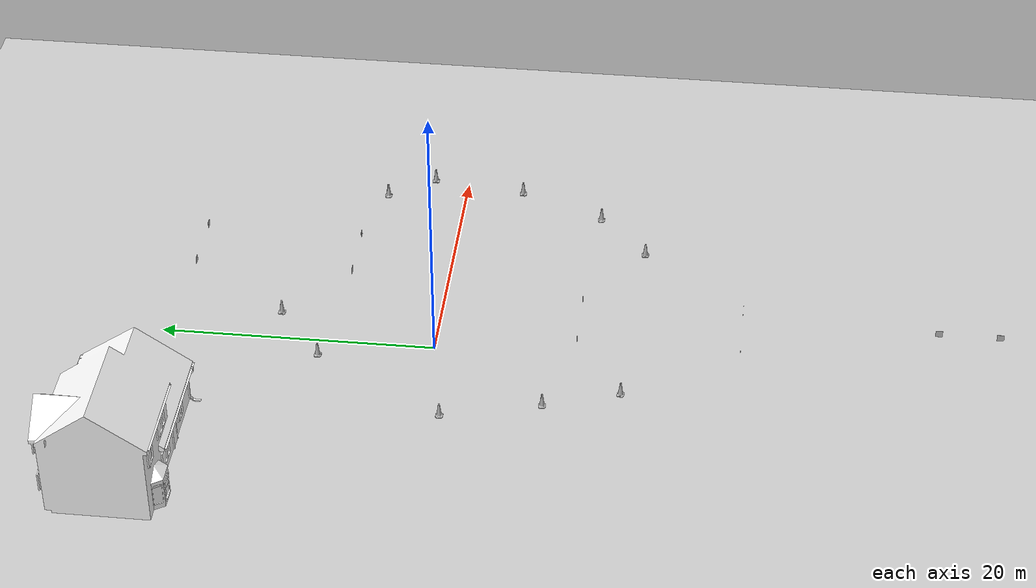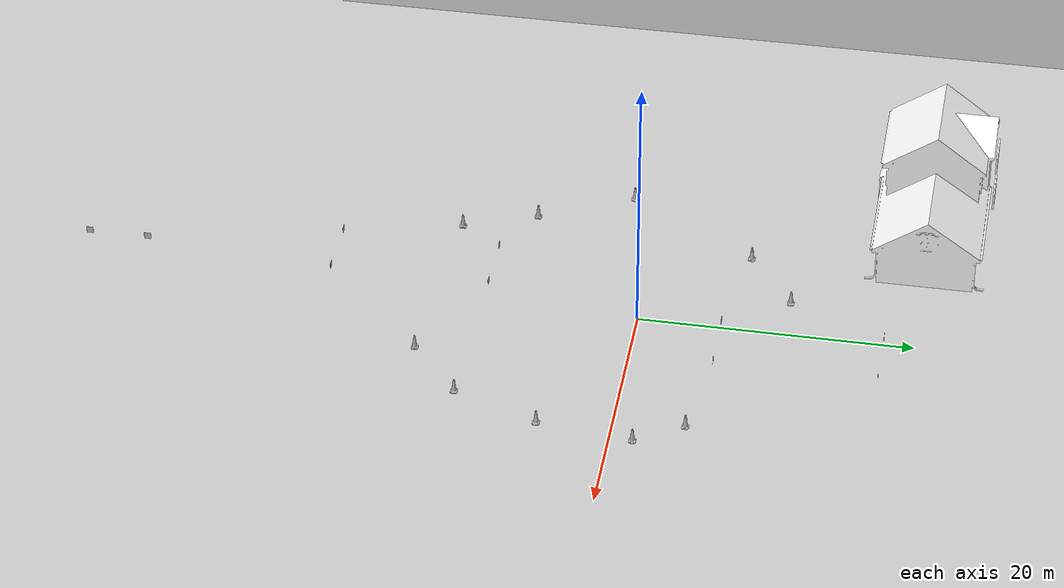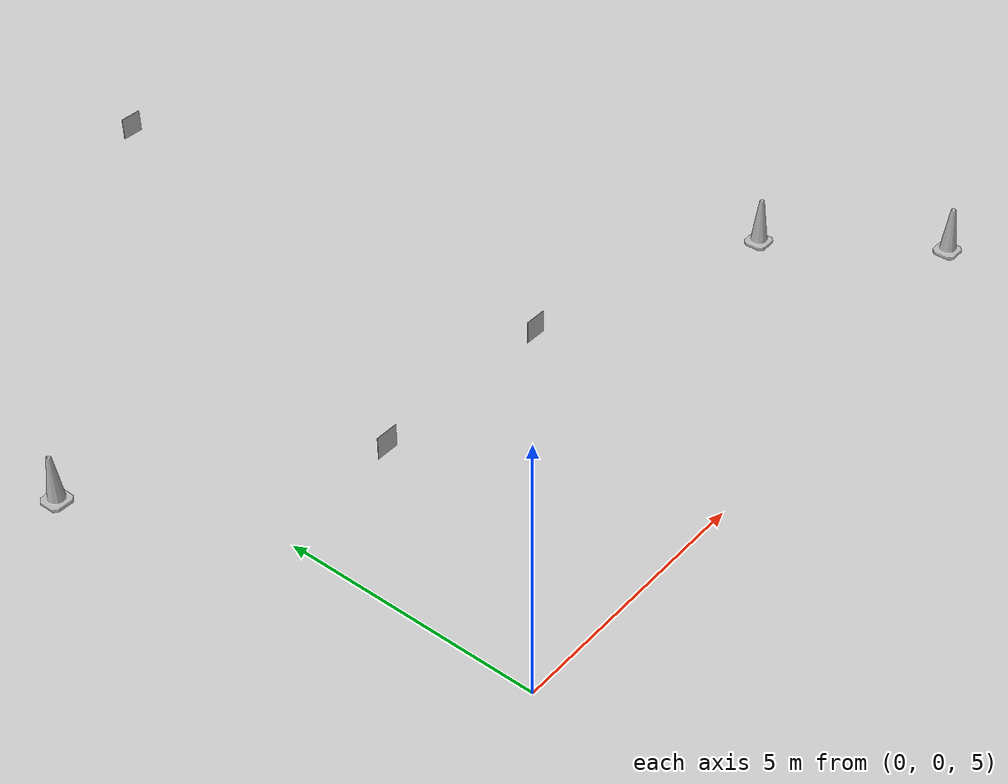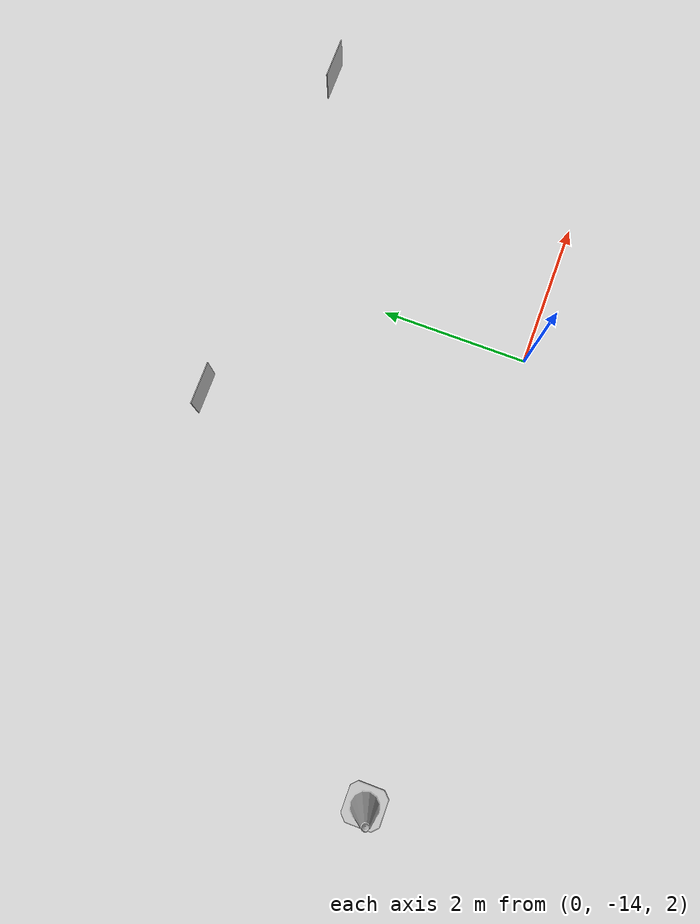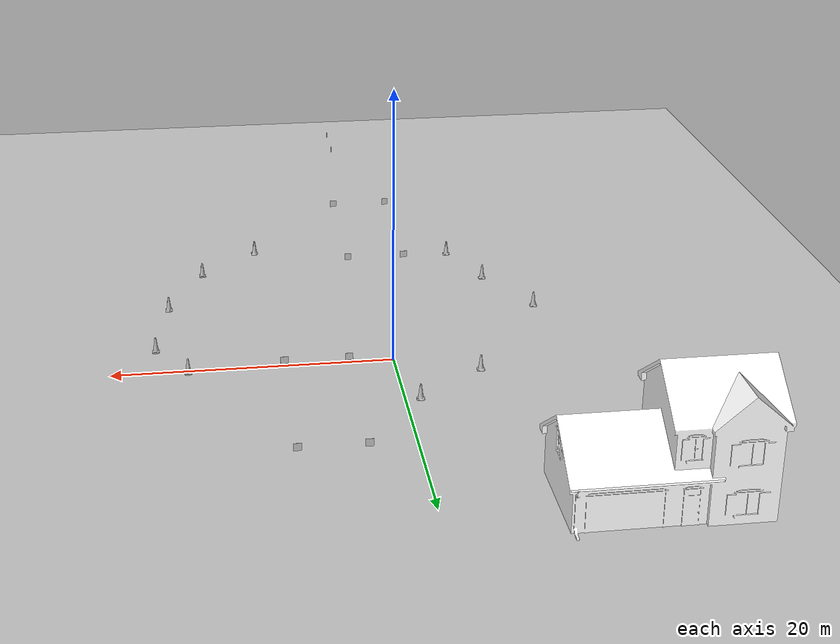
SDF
<sdf version="1.4">
 <world name="vrc_task_2">
  <scene><ambient>0.2 0.2 0.2 1.0</ambient></scene>
  <physics type="ode">
   <gravity>0 0 -9.81</gravity>
   <ode>
    <solver>
     <use_dynamic_moi_rescaling>true</use_dynamic_moi_rescaling>
     <type>quick</type>
     <iters>50</iters>
     <sor>1.4</sor>
    </solver>
    <constraints>
     <cfm>0.0</cfm>
     <erp>0.2</erp>
     <contact_max_correcting_vel>100.0</contact_max_correcting_vel>
     <contact_surface_layer>0.0</contact_surface_layer>
    </constraints>
   </ode>
   <real_time_update_rate>1000</real_time_update_rate>
   <max_step_size>0.001</max_step_size>
  </physics>
  <light type="directional" name="sun">
   <pose>0 0 100 0 0 0</pose>
   <diffuse>0.8 0.8 0.8 1</diffuse>
   <specular>0.1 0.1 0.1 1</specular>
   <attenuation>
    <range>1000</range>
    <constant>0.9</constant>
    <linear>0.01</linear>
    <quadratic>0.001</quadratic>
   </attenuation>
   <direction>0.2 0.0 -1.0</direction>
  </light>
  <light type="point" name="light_bulb">
   <cast_shadows>false</cast_shadows>
   <pose>-7.5 -41 5 0 0 0</pose>
   <diffuse>0.3 0.3 0.3 1</diffuse>
   <specular>0.0 0.0 0.0 1</specular>
   <attenuation>
    <range>80</range>
    <constant>0.9</constant>
    <linear>0.01</linear>
    <quadratic>0.001</quadratic>
   </attenuation>
  </light>
  <include>
   <uri>model://gate_number_1</uri>
   <name>gate_number_1_a</name>
   <pose>1 -35.85 3.75 0 0 0</pose>
  </include>
  <include>
   <uri>model://gate_number_1</uri>
   <name>gate_number_1_b</name>
   <pose>1 -40.15 3.75 0 0 0</pose>
  </include>
  <include>
   <uri>model://gate_number_2</uri>
   <name>gate_number_2_a</name>
   <pose>-2.15 -22 3.75 0 0 1.5707</pose>
  </include>
  <include>
   <uri>model://gate_number_2</uri>
   <name>gate_number_2_b</name>
   <pose>2.15 -22 3.75 0 0 1.5707</pose>
  </include>
  <include>
   <uri>model://construction_cone</uri>
   <name>cone_0</name>
   <static>true</static>
   <pose>15.763 -4.704 2.66 0 0 0</pose>
  </include>
  <include>
   <uri>model://construction_cone</uri>
   <name>cone_1</name>
   <static>true</static>
   <pose>-4.82 7.6 2.75  0 0 0</pose>
  </include>
  <include>
   <uri>model://construction_cone</uri>
   <name>cone_2</name>
   <static>true</static>
   <pose>-0.271239 10.978891 2.65053 0 0 0</pose>
  </include>
  <include>
   <uri>model://construction_cone</uri>
   <name>cone_3</name>
   <static>true</static>
   <pose>-10.430363 -1.794219 2.84281 0 0 0</pose>
  </include>
  <include>
   <uri>model://construction_cone</uri>
   <name>cone_4</name>
   <static>true</static>
   <pose>14.481933 5.461687 2.651944 0 0 0</pose>
  </include>
  <include>
   <uri>model://construction_cone</uri>
   <name>cone_5</name>
   <static>true</static>
   <pose>16.632443 2.107978 2.72098 0 0 0</pose>
  </include>
  <include>
   <uri>model://construction_cone</uri>
   <name>cone_6</name>
   <static>true</static>
   <pose>13.247138 -10.905164 2.549825 0 0 0</pose>
  </include>
  <include>
   <uri>model://construction_cone</uri>
   <name>cone_7</name>
   <static>true</static>
   <pose>9.107997 -14.508799 2.6829 0 0 0</pose>
  </include>
  <include>
   <uri>model://construction_cone</uri>
   <name>cone_8</name>
   <static>true</static>
   <pose>-6.052604 -13.905914 2.1020 0 0 0</pose>
  </include>
  <include>
   <uri>model://construction_cone</uri>
   <name>cone_9</name>
   <static>true</static>
   <pose>-7.950964 -8.615575 2.20553 0 0 0</pose>
  </include>
  <include><uri>model://house_3</uri><static>true</static><pose>-13 20 0 0 0 0</pose></include>
  <include>
   <uri>model://gate_number_3</uri>
   <name>gate_number_3_a</name>
   <pose>-2.15 -10.5 3.75 0 0 1.5707</pose>
  </include>
  <include>
   <uri>model://gate_number_3</uri>
   <name>gate_number_3_b</name>
   <pose>2.15 -10.5 3.75 0 0 1.5707</pose>
  </include>
  <include>
   <uri>model://gate_number_4</uri>
   <name>gate_number_4_a</name>
   <pose>3.85 6.5 3.75 0 0 1.5707</pose>
  </include>
  <include>
   <uri>model://gate_number_4</uri>
   <name>gate_number_4_b</name>
   <pose>8.15 6.5 3.75 0 0 1.5707</pose>
  </include>
  <include>
   <uri>model://gate_number_5</uri>
   <name>gate_number_5_a</name>
   <pose>3.85 18 3.75 0 0 1.5707</pose>
  </include>
  <include>
   <uri>model://gate_number_5</uri>
   <name>gate_number_5_b</name>
   <pose>8.15 18 3.75 0 0 1.5707</pose>
  </include>
  <model name="mud_ground_plane">
   <static>true</static>
   <pose>0.0 0.0 -0.59 0 0 0</pose>
   <link name="link">
    <collision name="collision">
     <geometry><plane><normal>0 0 1</normal><size>100 100</size></plane></geometry>
     <surface><friction><ode><mu>.5</mu><mu2>.5</mu2></ode></friction></surface>
    </collision>
    <visual name="visual">
     <cast_shadows>false</cast_shadows>
     <geometry><plane><normal>0 0 1</normal><size>100 100</size></plane></geometry>
     <material>
      <script>
       <uri>model://mud_box/materials/scripts</uri>
       <uri>model://mud_box/materials/textures</uri>
       <name>vrc/mud</name>
      </script>
     </material>
    </visual>
   </link>
  </model>
  <plugin filename="libVRCPlugin.so" name="vrc_plugin">
   <atlas><model_name>atlas</model_name><pin_link>utorso</pin_link></atlas>
   <drc_vehicle><model_name>golf_cart</model_name><seat_link>chassis</seat_link></drc_vehicle>
   <drc_fire_hose>
    <fire_hose_model>fire_hose</fire_hose_model>
    <coupling_link>coupling</coupling_link>
    <standpipe_model>standpipe</standpipe_model>
    <spout_link>standpipe</spout_link>
    <thread_pitch>-1000</thread_pitch>
    <coupling_relative_pose>1.17038e-05 -0.125623 0.35 -0.0412152 -1.57078 1.61199</coupling_relative_pose>
   </drc_fire_hose>
  </plugin>
  <plugin filename="libVRCScoringPlugin.so" name="vrc_scoring">
   <score_file>/tmp/vrc_final_task9/score.log</score_file>
  </plugin>
 </world>
</sdf>

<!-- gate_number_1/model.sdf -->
<sdf version="1.4">
  <model name="gate_number_1">
    <pose>0 0 .25 0 0 0</pose>
    <static>true</static>
    <link name="link">
      <collision name="collision">
        <geometry>
          <box>
            <size>0.01 0.5 0.5</size>
          </box>
        </geometry>
      </collision>

      <visual name="visual">
        <geometry>
          <mesh>
            <uri>model://gate_number_1/meshes/gate_number_1.dae</uri>
          </mesh>
        </geometry>
      </visual>
    </link>
  </model>
</sdf>

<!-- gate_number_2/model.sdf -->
<sdf version="1.4">
  <model name="gate_number_2">
    <pose>0 0 .25 0 0 0</pose>
    <static>true</static>
    <link name="link">
      <collision name="collision">
        <geometry>
          <box>
            <size>0.01 0.5 0.5</size>
          </box>
        </geometry>
      </collision>

      <visual name="visual">
        <geometry>
          <mesh>
            <uri>model://gate_number_2/meshes/gate_number_2.dae</uri>
          </mesh>
        </geometry>
      </visual>
    </link>
  </model>
</sdf>

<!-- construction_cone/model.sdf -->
<sdf version="1.5">
  <model name="Construction Cone">
    <link name="link">
      <collision name="collision">
        <geometry>
          <mesh>
            <scale>10 10 10</scale>
            <uri>file://isr-testbed/construction_cone/meshes/construction_cone.dae</uri>
          </mesh>
        </geometry>
      </collision>
      <visual name="visual">
        <geometry>
          <mesh>
            <scale>10 10 10</scale>
            <uri>file://isr-testbed/construction_cone/meshes/construction_cone.dae</uri>
          </mesh>
        </geometry>
      </visual>
    </link>
  </model>
</sdf>

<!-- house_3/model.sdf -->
<sdf version="1.5">
  <model name="House 3">
    <static>true</static>
    <link name="link">
      <collision name="collision">
        <geometry>
          <mesh>
            <uri>model://house_3/meshes/house_3.dae</uri>
            <scale>1.5 1.5 1.5</scale>
          </mesh>
        </geometry>
      </collision>
      <visual name="visual">
        <geometry>
          <mesh>
            <uri>model://house_3/meshes/house_3.dae</uri>
            <scale>1.5 1.5 1.5</scale>
          </mesh>
        </geometry>
        <material>
          <diffuse>1.0 1.0 1.0 1.0</diffuse>
          <specular>0.0 0.0 0.0 1.0</specular>
          <pbr>
            <metal>
              <albedo_map>model://house_3/materials/textures/house_3.png</albedo_map>
            </metal>
          </pbr>
        </material>
      </visual>
    </link>
  </model>
</sdf>

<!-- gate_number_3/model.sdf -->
<sdf version="1.4">
  <model name="gate_number_3">
    <pose>0 0 .25 0 0 0</pose>
    <static>true</static>
    <link name="link">
      <collision name="collision">
        <geometry>
          <box>
            <size>0.01 0.5 0.5</size>
          </box>
        </geometry>
      </collision>

      <visual name="visual">
        <geometry>
          <mesh>
            <uri>model://gate_number_3/meshes/gate_number_3.dae</uri>
          </mesh>
        </geometry>
      </visual>
    </link>
  </model>
</sdf>

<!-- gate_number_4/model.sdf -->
<sdf version="1.4">
  <model name="gate_number_4">
    <pose>0 0 .25 0 0 0</pose>
    <static>true</static>
    <link name="link">
      <collision name="collision">
        <geometry>
          <box>
            <size>0.01 0.5 0.5</size>
          </box>
        </geometry>
      </collision>

      <visual name="visual">
        <geometry>
          <mesh>
            <uri>model://gate_number_4/meshes/gate_number_4.dae</uri>
          </mesh>
        </geometry>
      </visual>
    </link>
  </model>
</sdf>

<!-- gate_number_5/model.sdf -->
<sdf version="1.4">
  <model name="gate_number_5">
    <pose>0 0 .25 0 0 0</pose>
    <static>true</static>
    <link name="link">
      <collision name="collision">
        <geometry>
          <box>
            <size>0.01 0.5 0.5</size>
          </box>
        </geometry>
      </collision>

      <visual name="visual">
        <geometry>
          <mesh>
            <uri>model://gate_number_5/meshes/gate_number_5.dae</uri>
          </mesh>
        </geometry>
      </visual>
    </link>
  </model>
</sdf>
